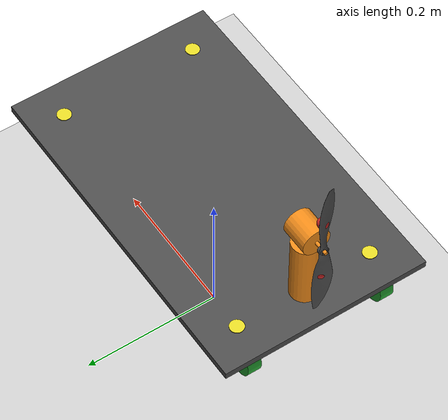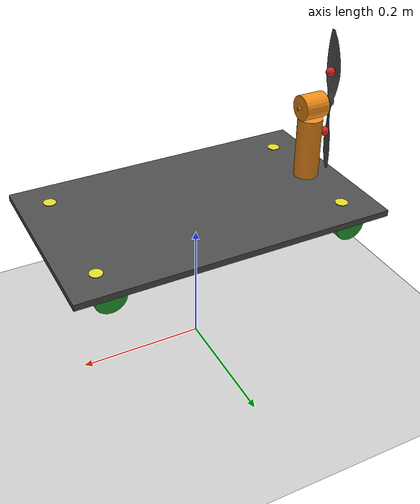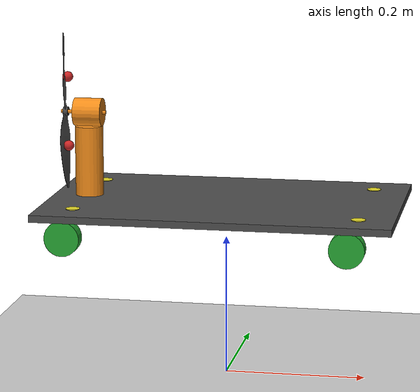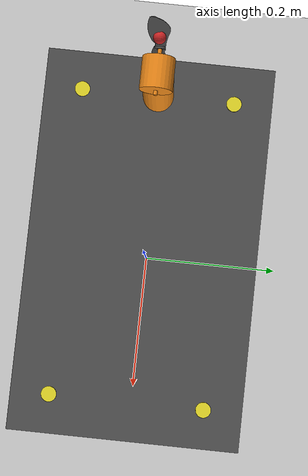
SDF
<?xml version="1.0" ?>
<sdf version="1.7">
  <world name="fan_car_world">

    <!-- GUI -->
    <gui fullscreen='0'>
        <camera name='user_camera'>
            <pose>1.71108 -1.18214 0.622439 0 0.283455 2.49619</pose>
            <view_controller>orbit</view_controller>
            <projection_type>perspective</projection_type>
        </camera>
    </gui>

    <!-- Scene -->
    <scene>
        <sky>
            <time>10</time>
            <sunrise>5</sunrise>
            <sunset>21</sunset>
            <clouds>
            <speed>12</speed>
            <direction>1.57079</direction>
            </clouds>
        </sky>
        <grid>1</grid>
        <origin_visual>1</origin_visual>
    </scene>

    <!-- Lights -->
    <include>
        <uri>model://sun</uri>
    </include>

    <!-- Coordinates  -->
    <spherical_coordinates>
        <latitude_deg>51.56991349023042</latitude_deg>
        <longitude_deg>-4.033693921107272</longitude_deg>
        <elevation>10.0</elevation>
        <heading_deg>0</heading_deg>
        <surface_model>EARTH_WGS84</surface_model>
    </spherical_coordinates>

    <!-- Physics: ode, bullet, simbody, dart-->
    <physics type='ode'>
        <max_step_size>0.001</max_step_size>
        <ode>
            <solver>
                <type>quick</type>
                <min_step_size>0.0001</min_step_size>
                <iters>50</iters>
                <sor>1.3</sor>
            </solver>
            <constraints>
                <cfm>0.001</cfm>
                <erp>0.3</erp>
                <contact_max_correcting_vel>10.0</contact_max_correcting_vel>
                <contact_surface_layer>0.005</contact_surface_layer>
            </constraints>
        </ode>
        <bullet>
            <solver>
                <type>sequential_impulse</type>
                <min_step_size>0.0001</min_step_size>
                <iters>50</iters>
                <sor>1.3</sor>
            </solver>
            <constraints>
                <cfm>0.01</cfm>
                <erp>0.2</erp>
                <contact_surface_layer>0.001</contact_surface_layer>
                <split_impulse>true</split_impulse>
                <split_impulse_penetration_threshold>-0.01</split_impulse_penetration_threshold>
            </constraints>
        </bullet>
        <simbody>
            <accuracy>0.001</accuracy>
            <max_transient_velocity>0.01</max_transient_velocity>
            <contact>
                <stiffness>1.0e-8</stiffness>
                <dissipation>100</dissipation>
                <plastic_coef_restitution>0.5</plastic_coef_restitution>
                <plastic_impact_velocity>0.5</plastic_impact_velocity>
                <static_friction>0.9</static_friction>
                <dynamic_friction>0.9</dynamic_friction>
                <viscous_friction>0</viscous_friction>
                <override_impact_capture_velocity>0.001</override_impact_capture_velocity>
                <override_stiction_transition_velocity>0.001</override_stiction_transition_velocity>
            </contact>
        </simbody>
        <dart>
            <solver>
                <solver_type>dantzig</solver_type>
            </solver>
            <collision_detector>fcl</collision_detector>
        </dart>
    </physics>

    <include>
      <uri>model://ground_plane</uri>
    </include>

    <include>
      <pose>0 0 0.25 0 0 0</pose>
      <uri>model://fan_car_ardupilot</uri>
    </include>

  </world>
</sdf>

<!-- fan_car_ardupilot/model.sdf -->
<sdf version='1.7'>
<model name='fan_car_ardupilot'>

    <include>
        <pose>0 0 0 0 0 0</pose>
        <uri>model://fan_car</uri>
    </include>

    <!--  Using values from iris_with_standoffs_demo -->
    <plugin name="prop_blade_1_liftdrag" filename="libLiftDragPlugin.so">
        <a0>0.3</a0>
        <alpha_stall>1.4</alpha_stall>
        <cla>4.2500</cla>
        <cda>0.10</cda>
        <cma>0.00</cma>
        <cla_stall>-0.025</cla_stall>
        <cda_stall>0.0</cda_stall>
        <cma_stall>0.0</cma_stall>
        <area>0.002</area>
        <air_density>1.2041</air_density>
        <cp>0.084 0 0</cp>
        <forward>0 1 0</forward>
        <upward>0 0 1</upward>
        <link_name>fan_car_ardupilot::fan_car::back_motor_link</link_name>
    </plugin>
    <plugin name="prop_blade_2_liftdrag" filename="libLiftDragPlugin.so">
        <a0>0.3</a0>
        <alpha_stall>1.4</alpha_stall>
        <cla>4.2500</cla>
        <cda>0.10</cda>
        <cma>0.00</cma>
        <cla_stall>-0.025</cla_stall>
        <cda_stall>0.0</cda_stall>
        <cma_stall>0.0</cma_stall>
        <area>0.002</area>
        <air_density>1.2041</air_density>
        <cp>-0.084 0 0</cp>
        <forward>0 -1 0</forward>
        <upward>0 0 1</upward>
        <link_name>fan_car_ardupilot::fan_car::back_motor_link</link_name>
    </plugin>

    <plugin name="ardupilot_plugin" filename="libArduPilotPlugin.so">
        <fdm_addr>127.0.0.1</fdm_addr>
        <fdm_port_in>9002</fdm_port_in>
        <connectionTimeoutMaxCount>5</connectionTimeoutMaxCount>
        <modelXYZToAirplaneXForwardZDown>0 0 0 3.141593 0 0</modelXYZToAirplaneXForwardZDown>
        <gazeboXYZToNED>0 0 0 3.141593 0 0</gazeboXYZToNED>
        <imuName>fan_car_ardupilot::imu_link::imu_sensor</imuName>

        <!-- Control / channels -->

        <!--
            SERVO1_FUNCTION 26 (Ground Steering)
            SERVO1_MIN      1000
            SERVO1_MAX      2000
            SERVO1_TRIM     1500
        -->
        <control channel="0">
            <jointName>fan_car_ardupilot::fan_car::back_steer_rotor_joint</jointName>
            <useForce>1</useForce>
            <multiplier>3.141592653</multiplier>
            <offset>-0.5</offset>
            <servo_min>1000</servo_min>
            <servo_max>2000</servo_max>
            <type>POSITION</type>
            <p_gain>10</p_gain>
            <i_gain>0.1</i_gain>
            <d_gain>0.02</d_gain>
            <i_max>1</i_max>
            <i_min>0</i_min>
            <cmd_max>100.0</cmd_max>
            <cmd_min>-100.0</cmd_min>
        </control>

        <!--
            SERVO3_FUNCTION 70 (Throttle)
            SERVO3_MIN      1000
            SERVO3_MAX      2000
            SERVO3_TRIM     1000
        -->
        <control channel="2">
            <jointName>fan_car_ardupilot::fan_car::back_motor_joint</jointName>
            <useForce>1</useForce>
            <multiplier>-800</multiplier>
            <offset>0</offset>
            <servo_min>1000</servo_min>
            <servo_max>2000</servo_max>
            <type>VELOCITY</type>
            <p_gain>0.007</p_gain>
            <i_gain>0.005</i_gain>
            <d_gain>0.0</d_gain>
            <i_max>0.1</i_max>
            <i_min>-0.1</i_min>
            <cmd_max>10.0</cmd_max>
            <cmd_min>-10.0</cmd_min>
        </control>
    </plugin>

    <link name='imu_link'>
        <inertial>
            <mass>0.01</mass>
            <inertia>
                <ixx>1.66667E-07</ixx>
                <ixy>0</ixy>
                <ixz>0</ixz>
                <iyy>1.66667E-07</iyy>
                <iyz>0</iyz>
                <izz>1.66667E-07</izz>
            </inertia>
        </inertial>
        <sensor name="imu_sensor" type="imu">
            <pose>0 0 0 3.141593 0 0</pose>
            <always_on>1</always_on>
            <update_rate>1000.0</update_rate>
        </sensor>
    </link>

    <joint name='imu_joint' type='revolute'>
        <child>imu_link</child>
        <parent>fan_car_ardupilot::fan_car::base_link</parent>
        <axis>
            <xyz>0 0 1</xyz>
            <limit>
                <lower>0</lower>
                <upper>0</upper>
            </limit>
        </axis>
    </joint>

</model>
</sdf>

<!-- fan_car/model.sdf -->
<sdf version='1.7'>
  <model name='fan_car'>
    <link name='base_link'>
      <inertial>
        <pose>0 0 0 0 -0 0</pose>
        <mass>1</mass>
        <inertia>
          <ixx>0.00750833</ixx>
          <ixy>0</ixy>
          <ixz>0</ixz>
          <iyy>0.0208417</iyy>
          <iyz>0</iyz>
          <izz>0.0283333</izz>
        </inertia>
      </inertial>
      <collision name='base_link_collision'>
        <pose>0 0 0 0 -0 0</pose>
        <geometry>
          <box>
            <size>0.5 0.3 0.01</size>
          </box>
        </geometry>
        <surface>
          <friction>
            <ode>
              <mu2>1.0</mu2>
              <mu1>1.0</mu1>
            </ode>
          </friction>
          <contact>
            <ode/>
          </contact>
        </surface>
      </collision>
      <visual name='base_link_visual'>
        <pose>0 0 0 0 -0 0</pose>
        <geometry>
          <box>
            <size>0.5 0.3 0.01</size>
          </box>
        </geometry>
        <material>
          <script>
            <name>Gazebo/DarkGray</name>
            <uri>file://media/materials/scripts/gazebo.material</uri>
          </script>
        </material>
      </visual>
      <gravity>1</gravity>
      <velocity_decay/>
    </link>
    <joint name='back_left_castor_joint' type='revolute'>
      <pose relative_to='base_link'>-0.2 0.1 0 0 -0 0</pose>
      <parent>base_link</parent>
      <child>back_left_castor_link</child>
      <axis>
        <xyz>0 0 1</xyz>
        <limit>
          <lower>-1e+16</lower>
          <upper>1e+16</upper>
        </limit>
        <dynamics>
          <damping>0.0001</damping>
          <friction>0.0001</friction>
          <spring_reference>0</spring_reference>
          <spring_stiffness>0</spring_stiffness>
        </dynamics>
      </axis>
      <physics>
        <ode>
          <limit>
            <cfm>0</cfm>
            <erp>0.2</erp>
          </limit>
        </ode>
      </physics>
    </joint>
    <link name='back_left_castor_link'>
      <pose relative_to='back_left_castor_joint'>0 0 0 0 -0 0</pose>
      <inertial>
        <pose>0 0 0 0 -0 0</pose>
        <mass>0.05</mass>
        <inertia>
          <ixx>1.85e-06</ixx>
          <ixy>0</ixy>
          <ixz>0</ixz>
          <iyy>1.85e-06</iyy>
          <iyz>0</iyz>
          <izz>2.5e-06</izz>
        </inertia>
      </inertial>
      <collision name='back_left_castor_link_collision'>
        <pose>0 0 0 0 -0 0</pose>
        <geometry>
          <cylinder>
            <length>0.012</length>
            <radius>0.01</radius>
          </cylinder>
        </geometry>
        <surface>
          <friction>
            <ode>
              <mu2>1.0</mu2>
              <mu1>1.0</mu1>
            </ode>
          </friction>
          <contact>
            <ode/>
          </contact>
        </surface>
      </collision>
      <visual name='back_left_castor_link_visual'>
        <pose>0 0 0 0 -0 0</pose>
        <geometry>
          <cylinder>
            <length>0.012</length>
            <radius>0.01</radius>
          </cylinder>
        </geometry>
        <material>
          <script>
            <name>Gazebo/Yellow</name>
            <uri>file://media/materials/scripts/gazebo.material</uri>
          </script>
        </material>
      </visual>
      <gravity>1</gravity>
      <velocity_decay/>
    </link>
    <joint name='back_left_wheel_joint' type='revolute'>
      <pose relative_to='back_left_castor_link'>-0.015 0 -0.037 -1.5708 0 0</pose>
      <parent>back_left_castor_link</parent>
      <child>back_left_castor_wheel_link</child>
      <axis>
        <xyz>0 0 1</xyz>
        <limit>
          <lower>-1e+16</lower>
          <upper>1e+16</upper>
        </limit>
        <dynamics>
          <damping>0.0001</damping>
          <friction>0.03</friction>
          <spring_reference>0</spring_reference>
          <spring_stiffness>0</spring_stiffness>
        </dynamics>
      </axis>
      <physics>
        <ode>
          <limit>
            <cfm>0</cfm>
            <erp>0.2</erp>
          </limit>
        </ode>
      </physics>
    </joint>
    <link name='back_left_castor_wheel_link'>
      <pose relative_to='back_left_wheel_joint'>0 0 0 0 -0 0</pose>
      <inertial>
        <pose>0 0 0 0 -0 0</pose>
        <mass>0.1</mass>
        <inertia>
          <ixx>1.89583e-05</ixx>
          <ixy>0</ixy>
          <ixz>0</ixz>
          <iyy>1.89583e-05</iyy>
          <iyz>0</iyz>
          <izz>3.125e-05</izz>
        </inertia>
      </inertial>
      <collision name='back_left_castor_wheel_link_collision'>
        <pose>0 0 0 0 -0 0</pose>
        <geometry>
          <cylinder>
            <length>0.02</length>
            <radius>0.025</radius>
          </cylinder>
        </geometry>
        <surface>
          <friction>
            <ode>
              <mu2>1.0</mu2>
              <mu1>1.0</mu1>
            </ode>
          </friction>
          <contact>
            <ode/>
          </contact>
        </surface>
      </collision>
      <visual name='back_left_castor_wheel_link_visual'>
        <pose>0 0 0 0 -0 0</pose>
        <geometry>
          <cylinder>
            <length>0.02</length>
            <radius>0.025</radius>
          </cylinder>
        </geometry>
        <material>
          <script>
            <name>Gazebo/Green</name>
            <uri>file://media/materials/scripts/gazebo.material</uri>
          </script>
        </material>
      </visual>
      <gravity>1</gravity>
      <velocity_decay/>
    </link>
    <joint name='back_right_castor_joint' type='revolute'>
      <pose relative_to='base_link'>-0.2 -0.1 0 0 -0 0</pose>
      <parent>base_link</parent>
      <child>back_right_castor_link</child>
      <axis>
        <xyz>0 0 1</xyz>
        <limit>
          <lower>-1e+16</lower>
          <upper>1e+16</upper>
        </limit>
        <dynamics>
          <damping>0.0001</damping>
          <friction>0.0001</friction>
          <spring_reference>0</spring_reference>
          <spring_stiffness>0</spring_stiffness>
        </dynamics>
      </axis>
      <physics>
        <ode>
          <limit>
            <cfm>0</cfm>
            <erp>0.2</erp>
          </limit>
        </ode>
      </physics>
    </joint>
    <link name='back_right_castor_link'>
      <pose relative_to='back_right_castor_joint'>0 0 0 0 -0 0</pose>
      <inertial>
        <pose>0 0 0 0 -0 0</pose>
        <mass>0.05</mass>
        <inertia>
          <ixx>1.85e-06</ixx>
          <ixy>0</ixy>
          <ixz>0</ixz>
          <iyy>1.85e-06</iyy>
          <iyz>0</iyz>
          <izz>2.5e-06</izz>
        </inertia>
      </inertial>
      <collision name='back_right_castor_link_collision'>
        <pose>0 0 0 0 -0 0</pose>
        <geometry>
          <cylinder>
            <length>0.012</length>
            <radius>0.01</radius>
          </cylinder>
        </geometry>
        <surface>
          <friction>
            <ode>
              <mu2>1.0</mu2>
              <mu1>1.0</mu1>
            </ode>
          </friction>
          <contact>
            <ode/>
          </contact>
        </surface>
      </collision>
      <visual name='back_right_castor_link_visual'>
        <pose>0 0 0 0 -0 0</pose>
        <geometry>
          <cylinder>
            <length>0.012</length>
            <radius>0.01</radius>
          </cylinder>
        </geometry>
        <material>
          <script>
            <name>Gazebo/Yellow</name>
            <uri>file://media/materials/scripts/gazebo.material</uri>
          </script>
        </material>
      </visual>
      <gravity>1</gravity>
      <velocity_decay/>
    </link>
    <joint name='back_right_wheel_joint' type='revolute'>
      <pose relative_to='back_right_castor_link'>-0.015 0 -0.037 -1.5708 0 0</pose>
      <parent>back_right_castor_link</parent>
      <child>back_right_castor_wheel_link</child>
      <axis>
        <xyz>0 0 1</xyz>
        <limit>
          <lower>-1e+16</lower>
          <upper>1e+16</upper>
        </limit>
        <dynamics>
          <damping>0.0001</damping>
          <friction>0.03</friction>
          <spring_reference>0</spring_reference>
          <spring_stiffness>0</spring_stiffness>
        </dynamics>
      </axis>
      <physics>
        <ode>
          <limit>
            <cfm>0</cfm>
            <erp>0.2</erp>
          </limit>
        </ode>
      </physics>
    </joint>
    <link name='back_right_castor_wheel_link'>
      <pose relative_to='back_right_wheel_joint'>0 0 0 0 -0 0</pose>
      <inertial>
        <pose>0 0 0 0 -0 0</pose>
        <mass>0.1</mass>
        <inertia>
          <ixx>1.89583e-05</ixx>
          <ixy>0</ixy>
          <ixz>0</ixz>
          <iyy>1.89583e-05</iyy>
          <iyz>0</iyz>
          <izz>3.125e-05</izz>
        </inertia>
      </inertial>
      <collision name='back_right_castor_wheel_link_collision'>
        <pose>0 0 0 0 -0 0</pose>
        <geometry>
          <cylinder>
            <length>0.02</length>
            <radius>0.025</radius>
          </cylinder>
        </geometry>
        <surface>
          <friction>
            <ode>
              <mu2>1.0</mu2>
              <mu1>1.0</mu1>
            </ode>
          </friction>
          <contact>
            <ode/>
          </contact>
        </surface>
      </collision>
      <visual name='back_right_castor_wheel_link_visual'>
        <pose>0 0 0 0 -0 0</pose>
        <geometry>
          <cylinder>
            <length>0.02</length>
            <radius>0.025</radius>
          </cylinder>
        </geometry>
        <material>
          <script>
            <name>Gazebo/Green</name>
            <uri>file://media/materials/scripts/gazebo.material</uri>
          </script>
        </material>
      </visual>
      <gravity>1</gravity>
      <velocity_decay/>
    </link>
    <joint name='back_steer_rotor_joint' type='revolute'>
      <pose relative_to='base_link'>-0.2 0 0.055 0 -0 0</pose>
      <parent>base_link</parent>
      <child>back_steer_rotor_link</child>
      <axis>
        <xyz>0 0 1</xyz>
        <limit>
          <lower>-3.14159</lower>
          <upper>3.14159</upper>
          <effort>50</effort>
          <velocity>5</velocity>
        </limit>
        <dynamics>
          <damping>0.0001</damping>
          <friction>0.0001</friction>
          <spring_reference>0</spring_reference>
          <spring_stiffness>0</spring_stiffness>
        </dynamics>
      </axis>
      <physics>
        <ode>
          <limit>
            <cfm>0</cfm>
            <erp>0.2</erp>
          </limit>
        </ode>
      </physics>
    </joint>
    <link name='back_steer_rotor_link'>
      <pose relative_to='back_steer_rotor_joint'>0 0 0 0 -0 0</pose>
      <inertial>
        <pose>0 0 0 0 -0 0</pose>
        <mass>0.1</mass>
        <inertia>
          <ixx>9.33333e-05</ixx>
          <ixy>0</ixy>
          <ixz>0</ixz>
          <iyy>9.33333e-05</iyy>
          <iyz>0</iyz>
          <izz>2e-05</izz>
        </inertia>
      </inertial>
      <collision name='back_steer_rotor_link_collision'>
        <pose>0 0 0 0 -0 0</pose>
        <geometry>
          <cylinder>
            <length>0.1</length>
            <radius>0.02</radius>
          </cylinder>
        </geometry>
        <surface>
          <friction>
            <ode>
              <mu2>1.0</mu2>
              <mu1>1.0</mu1>
            </ode>
          </friction>
          <contact>
            <ode/>
          </contact>
        </surface>
      </collision>
      <visual name='back_steer_rotor_link_visual'>
        <pose>0 0 0 0 -0 0</pose>
        <geometry>
          <cylinder>
            <length>0.1</length>
            <radius>0.02</radius>
          </cylinder>
        </geometry>
        <material>
          <script>
            <name>Gazebo/Orange</name>
            <uri>file://media/materials/scripts/gazebo.material</uri>
          </script>
        </material>
      </visual>
      <gravity>1</gravity>
      <velocity_decay/>
    </link>
    <joint name='back_motor_joint' type='revolute'>
      <pose relative_to='back_steer_rotor_link'>0 0 0.07 0 -1.5708 0</pose>
      <parent>back_steer_rotor_link</parent>
      <child>back_motor_link</child>
      <axis>
        <xyz>0 0 1</xyz>
        <limit>
          <lower>-1e+16</lower>
          <upper>1e+16</upper>
        </limit>
        <dynamics>
          <damping>0.0001</damping>
          <friction>0.0001</friction>
          <spring_reference>0</spring_reference>
          <spring_stiffness>0</spring_stiffness>
        </dynamics>
      </axis>
      <physics>
        <ode>
          <limit>
            <cfm>0</cfm>
            <erp>0.2</erp>
          </limit>
        </ode>
      </physics>
      <sensor name='force_torque_sensor' type='force_torque'>
        <always_on>1</always_on>
        <update_rate>30</update_rate>
        <visualize>1</visualize>
      </sensor>
    </joint>
    <link name='back_motor_link'>
      <pose relative_to='back_motor_joint'>0 0 0 0 -0 0</pose>
      <inertial>
        <pose>0 0 0.004286 0 -0 0</pose>
        <mass>0.07</mass>
        <inertia>
          <ixx>2.18393e-05</ixx>
          <ixy>0</ixy>
          <ixz>-2.03725e-21</ixz>
          <iyy>5.51101e-05</iyy>
          <iyz>0</iyz>
          <izz>4.53958e-05</izz>
        </inertia>
      </inertial>
      <collision name='back_motor_link_collision'>
        <pose>0 0 0 0 -0 0</pose>
        <geometry>
          <cylinder>
            <length>0.04</length>
            <radius>0.02</radius>
          </cylinder>
        </geometry>
        <surface>
          <friction>
            <ode>
              <mu2>1.0</mu2>
              <mu1>1.0</mu1>
            </ode>
          </friction>
          <contact>
            <ode/>
          </contact>
        </surface>
      </collision>
      <collision name='back_motor_link_fixed_joint_lump__back_prop_link_collision_1'>
        <pose>0 0 0.03 0 1.5708 0</pose>
        <geometry>
          <cylinder>
            <length>0.2</length>
            <radius>0.005</radius>
          </cylinder>
        </geometry>
        <surface>
          <friction>
            <ode>
              <mu2>1.0</mu2>
              <mu1>1.0</mu1>
            </ode>
          </friction>
          <contact>
            <ode/>
          </contact>
        </surface>
      </collision>
      <visual name='back_motor_link_visual'>
        <pose>0 0 0 0 -0 0</pose>
        <geometry>
          <cylinder>
            <length>0.04</length>
            <radius>0.02</radius>
          </cylinder>
        </geometry>
        <material>
          <script>
            <name>Gazebo/Orange</name>
            <uri>file://media/materials/scripts/gazebo.material</uri>
          </script>
        </material>
      </visual>
      <visual name='back_motor_link_fixed_joint_lump__back_motor_axle_link_visual_1'>
        <pose>0 0 0.0075 0 -0 0</pose>
        <geometry>
          <cylinder>
            <length>0.065</length>
            <radius>0.0025</radius>
          </cylinder>
        </geometry>
        <material>
          <script>
            <name>Gazebo/Orange</name>
            <uri>file://media/materials/scripts/gazebo.material</uri>
          </script>
        </material>
      </visual>
      <visual name='back_motor_link_fixed_joint_lump__back_prop_link_visual_2'>
        <pose>0 0 0.03 0 -0 0.174533</pose>
        <geometry>
          <mesh>
            <scale>1 1 1</scale>
            <uri>model://fan_car/meshes/propeller_9x4.7.stl</uri>
          </mesh>
        </geometry>
        <material>
          <script>
            <name>Gazebo/DarkGray</name>
            <uri>file://media/materials/scripts/gazebo.material</uri>
          </script>
        </material>
      </visual>
      <visual name='back_motor_link_fixed_joint_lump__back_prop_cp1_link_visual_3'>
        <pose>0.05 0 0.03 0 -0 0</pose>
        <geometry>
          <sphere>
            <radius>0.0075</radius>
          </sphere>
        </geometry>
        <material>
          <script>
            <name>Gazebo/Red</name>
            <uri>file://media/materials/scripts/gazebo.material</uri>
          </script>
        </material>
      </visual>
      <visual name='back_motor_link_fixed_joint_lump__back_prop_cp2_link_visual_4'>
        <pose>-0.05 0 0.03 0 -0 0</pose>
        <geometry>
          <sphere>
            <radius>0.0075</radius>
          </sphere>
        </geometry>
        <material>
          <script>
            <name>Gazebo/Red</name>
            <uri>file://media/materials/scripts/gazebo.material</uri>
          </script>
        </material>
      </visual>
      <velocity_decay/>
      <velocity_decay/>
      <velocity_decay/>
      <velocity_decay/>
      <gravity>1</gravity>
      <velocity_decay/>
    </link>
    <joint name='front_left_castor_joint' type='revolute'>
      <pose relative_to='base_link'>0.2 0.1 0 0 -0 0</pose>
      <parent>base_link</parent>
      <child>front_left_castor_link</child>
      <axis>
        <xyz>0 0 1</xyz>
        <limit>
          <lower>-1e+16</lower>
          <upper>1e+16</upper>
        </limit>
        <dynamics>
          <damping>0.0001</damping>
          <friction>0.0001</friction>
          <spring_reference>0</spring_reference>
          <spring_stiffness>0</spring_stiffness>
        </dynamics>
      </axis>
      <physics>
        <ode>
          <limit>
            <cfm>0</cfm>
            <erp>0.2</erp>
          </limit>
        </ode>
      </physics>
    </joint>
    <link name='front_left_castor_link'>
      <pose relative_to='front_left_castor_joint'>0 0 0 0 -0 0</pose>
      <inertial>
        <pose>0 0 0 0 -0 0</pose>
        <mass>0.05</mass>
        <inertia>
          <ixx>1.85e-06</ixx>
          <ixy>0</ixy>
          <ixz>0</ixz>
          <iyy>1.85e-06</iyy>
          <iyz>0</iyz>
          <izz>2.5e-06</izz>
        </inertia>
      </inertial>
      <collision name='front_left_castor_link_collision'>
        <pose>0 0 0 0 -0 0</pose>
        <geometry>
          <cylinder>
            <length>0.012</length>
            <radius>0.01</radius>
          </cylinder>
        </geometry>
        <surface>
          <friction>
            <ode>
              <mu2>1.0</mu2>
              <mu1>1.0</mu1>
            </ode>
          </friction>
          <contact>
            <ode/>
          </contact>
        </surface>
      </collision>
      <visual name='front_left_castor_link_visual'>
        <pose>0 0 0 0 -0 0</pose>
        <geometry>
          <cylinder>
            <length>0.012</length>
            <radius>0.01</radius>
          </cylinder>
        </geometry>
        <material>
          <script>
            <name>Gazebo/Yellow</name>
            <uri>file://media/materials/scripts/gazebo.material</uri>
          </script>
        </material>
      </visual>
      <gravity>1</gravity>
      <velocity_decay/>
    </link>
    <joint name='front_left_wheel_joint' type='revolute'>
      <pose relative_to='front_left_castor_link'>-0.015 0 -0.037 -1.5708 0 0</pose>
      <parent>front_left_castor_link</parent>
      <child>front_left_castor_wheel_link</child>
      <axis>
        <xyz>0 0 1</xyz>
        <limit>
          <lower>-1e+16</lower>
          <upper>1e+16</upper>
        </limit>
        <dynamics>
          <damping>0.0001</damping>
          <friction>0.03</friction>
          <spring_reference>0</spring_reference>
          <spring_stiffness>0</spring_stiffness>
        </dynamics>
      </axis>
      <physics>
        <ode>
          <limit>
            <cfm>0</cfm>
            <erp>0.2</erp>
          </limit>
        </ode>
      </physics>
    </joint>
    <link name='front_left_castor_wheel_link'>
      <pose relative_to='front_left_wheel_joint'>0 0 0 0 -0 0</pose>
      <inertial>
        <pose>0 0 0 0 -0 0</pose>
        <mass>0.1</mass>
        <inertia>
          <ixx>1.89583e-05</ixx>
          <ixy>0</ixy>
          <ixz>0</ixz>
          <iyy>1.89583e-05</iyy>
          <iyz>0</iyz>
          <izz>3.125e-05</izz>
        </inertia>
      </inertial>
      <collision name='front_left_castor_wheel_link_collision'>
        <pose>0 0 0 0 -0 0</pose>
        <geometry>
          <cylinder>
            <length>0.02</length>
            <radius>0.025</radius>
          </cylinder>
        </geometry>
        <surface>
          <friction>
            <ode>
              <mu2>1.0</mu2>
              <mu1>1.0</mu1>
            </ode>
          </friction>
          <contact>
            <ode/>
          </contact>
        </surface>
      </collision>
      <visual name='front_left_castor_wheel_link_visual'>
        <pose>0 0 0 0 -0 0</pose>
        <geometry>
          <cylinder>
            <length>0.02</length>
            <radius>0.025</radius>
          </cylinder>
        </geometry>
        <material>
          <script>
            <name>Gazebo/Green</name>
            <uri>file://media/materials/scripts/gazebo.material</uri>
          </script>
        </material>
      </visual>
      <gravity>1</gravity>
      <velocity_decay/>
    </link>
    <joint name='front_right_castor_joint' type='revolute'>
      <pose relative_to='base_link'>0.2 -0.1 0 0 -0 0</pose>
      <parent>base_link</parent>
      <child>front_right_castor_link</child>
      <axis>
        <xyz>0 0 1</xyz>
        <limit>
          <lower>-1e+16</lower>
          <upper>1e+16</upper>
        </limit>
        <dynamics>
          <damping>0.0001</damping>
          <friction>0.0001</friction>
          <spring_reference>0</spring_reference>
          <spring_stiffness>0</spring_stiffness>
        </dynamics>
      </axis>
      <physics>
        <ode>
          <limit>
            <cfm>0</cfm>
            <erp>0.2</erp>
          </limit>
        </ode>
      </physics>
    </joint>
    <link name='front_right_castor_link'>
      <pose relative_to='front_right_castor_joint'>0 0 0 0 -0 0</pose>
      <inertial>
        <pose>0 0 0 0 -0 0</pose>
        <mass>0.05</mass>
        <inertia>
          <ixx>1.85e-06</ixx>
          <ixy>0</ixy>
          <ixz>0</ixz>
          <iyy>1.85e-06</iyy>
          <iyz>0</iyz>
          <izz>2.5e-06</izz>
        </inertia>
      </inertial>
      <collision name='front_right_castor_link_collision'>
        <pose>0 0 0 0 -0 0</pose>
        <geometry>
          <cylinder>
            <length>0.012</length>
            <radius>0.01</radius>
          </cylinder>
        </geometry>
        <surface>
          <friction>
            <ode>
              <mu2>1.0</mu2>
              <mu1>1.0</mu1>
            </ode>
          </friction>
          <contact>
            <ode/>
          </contact>
        </surface>
      </collision>
      <visual name='front_right_castor_link_visual'>
        <pose>0 0 0 0 -0 0</pose>
        <geometry>
          <cylinder>
            <length>0.012</length>
            <radius>0.01</radius>
          </cylinder>
        </geometry>
        <material>
          <script>
            <name>Gazebo/Yellow</name>
            <uri>file://media/materials/scripts/gazebo.material</uri>
          </script>
        </material>
      </visual>
      <gravity>1</gravity>
      <velocity_decay/>
    </link>
    <joint name='front_right_wheel_joint' type='revolute'>
      <pose relative_to='front_right_castor_link'>-0.015 0 -0.037 -1.5708 0 0</pose>
      <parent>front_right_castor_link</parent>
      <child>front_right_castor_wheel_link</child>
      <axis>
        <xyz>0 0 1</xyz>
        <limit>
          <lower>-1e+16</lower>
          <upper>1e+16</upper>
        </limit>
        <dynamics>
          <damping>0.0001</damping>
          <friction>0.03</friction>
          <spring_reference>0</spring_reference>
          <spring_stiffness>0</spring_stiffness>
        </dynamics>
      </axis>
      <physics>
        <ode>
          <limit>
            <cfm>0</cfm>
            <erp>0.2</erp>
          </limit>
        </ode>
      </physics>
    </joint>
    <link name='front_right_castor_wheel_link'>
      <pose relative_to='front_right_wheel_joint'>0 0 0 0 -0 0</pose>
      <inertial>
        <pose>0 0 0 0 -0 0</pose>
        <mass>0.1</mass>
        <inertia>
          <ixx>1.89583e-05</ixx>
          <ixy>0</ixy>
          <ixz>0</ixz>
          <iyy>1.89583e-05</iyy>
          <iyz>0</iyz>
          <izz>3.125e-05</izz>
        </inertia>
      </inertial>
      <collision name='front_right_castor_wheel_link_collision'>
        <pose>0 0 0 0 -0 0</pose>
        <geometry>
          <cylinder>
            <length>0.02</length>
            <radius>0.025</radius>
          </cylinder>
        </geometry>
        <surface>
          <friction>
            <ode>
              <mu2>1.0</mu2>
              <mu1>1.0</mu1>
            </ode>
          </friction>
          <contact>
            <ode/>
          </contact>
        </surface>
      </collision>
      <visual name='front_right_castor_wheel_link_visual'>
        <pose>0 0 0 0 -0 0</pose>
        <geometry>
          <cylinder>
            <length>0.02</length>
            <radius>0.025</radius>
          </cylinder>
        </geometry>
        <material>
          <script>
            <name>Gazebo/Green</name>
            <uri>file://media/materials/scripts/gazebo.material</uri>
          </script>
        </material>
      </visual>
      <gravity>1</gravity>
      <velocity_decay/>
    </link>
  </model>
</sdf>
